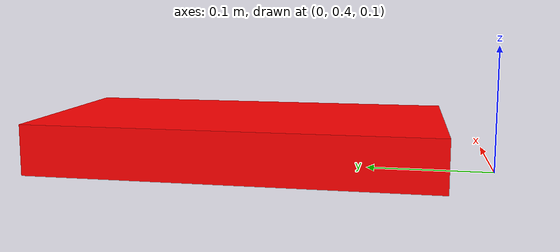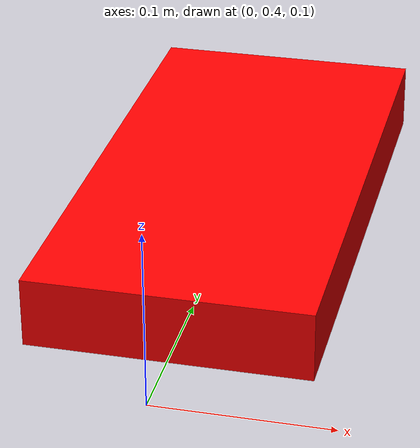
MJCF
<mujoco>
  <worldbody>
    <body name="big_box" pos="0 0.6 0.121">
      <freejoint name="big_box_joint"/>
      <geom name="big_box_geom" type="box" size="0.08 0.16 0.02"
            rgba="1 0 0 1" condim="6" mass="0.1" contype="1" conaffinity="1"
            friction="2 0.1 0.01"/>
    </body>
  </worldbody>
</mujoco>
